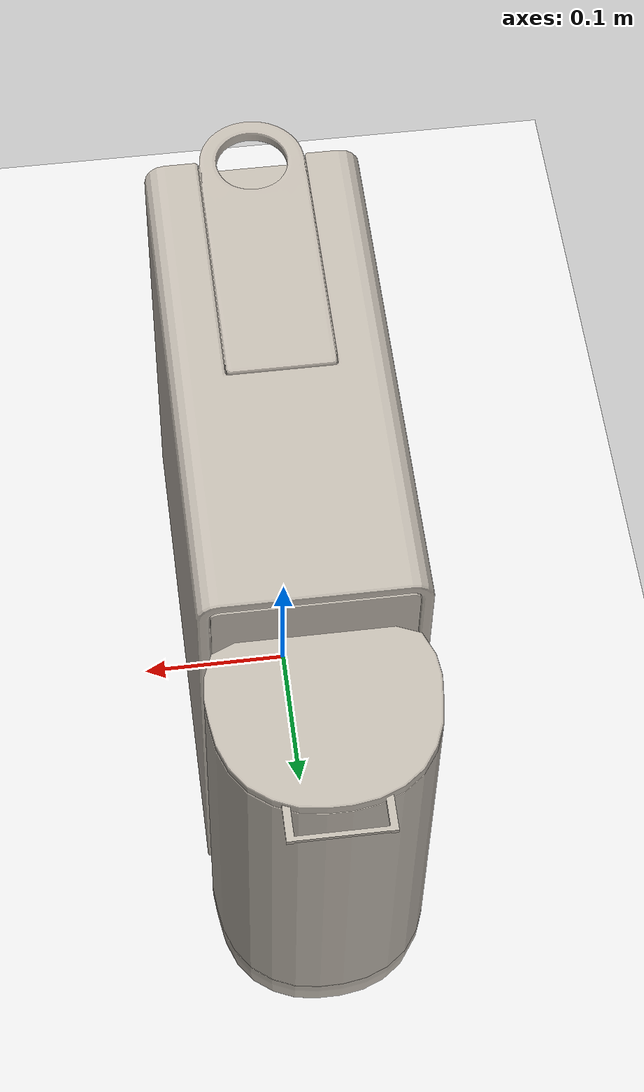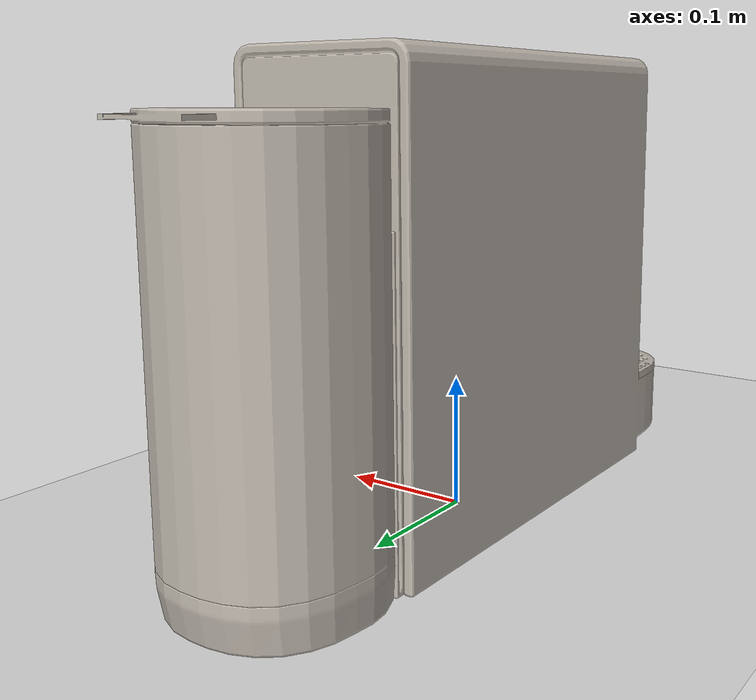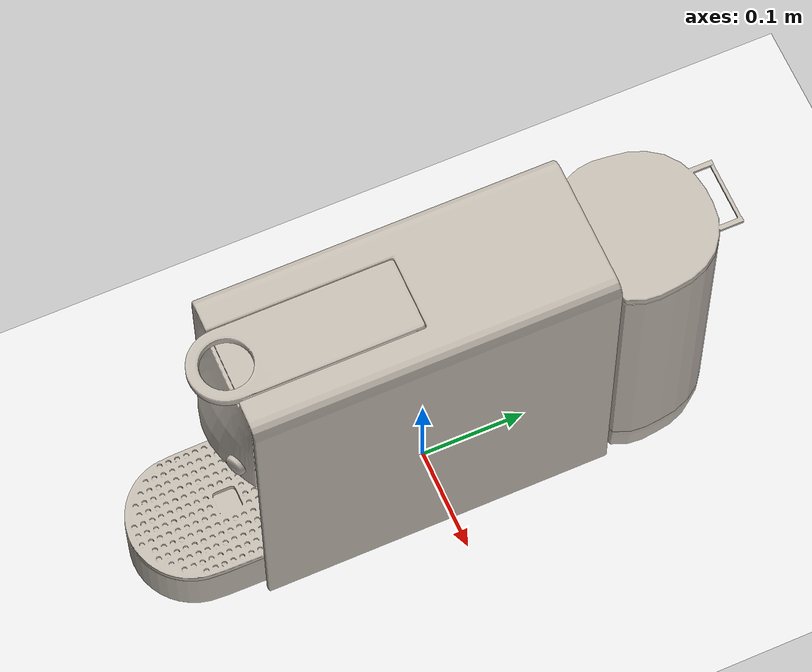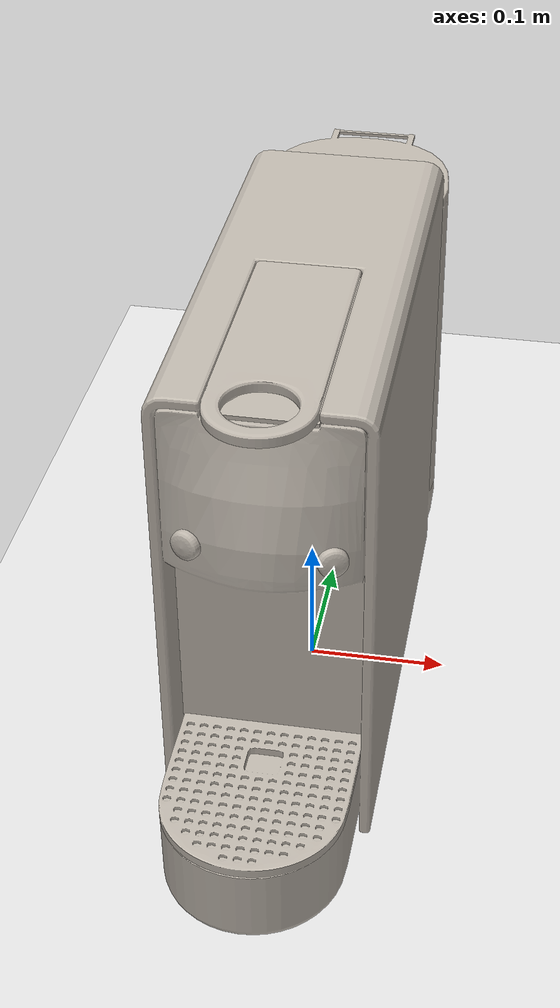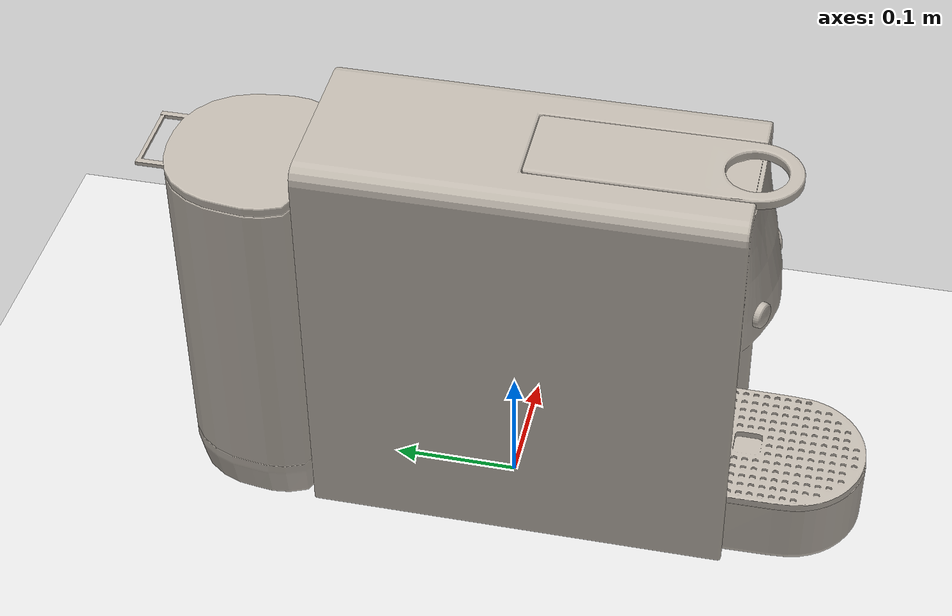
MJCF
<mujoco model="CoffeeMachine039">
  <compiler
    angle="radian"
    assetdir="../../examples/mujoco_models/CoffeeMachine039_obj"
    texturedir="../../Lightwheel/CoffeeMachine039/texture"
  />

  <visual>
    <global offwidth="1024" offheight="1024" />
  </visual>

  <asset>
    <texture name="T_CoffeeMachine039_BC001" type="2d" file="T_CoffeeMachine039_BC001.png" />
    <material
      name="material_0"
      texture="T_CoffeeMachine039_BC001"
      rgba="1 1 1 1"
      texuniform="false"
      texrepeat="1 1"
      specular="0"
      reflectance="0"
      shininess="0"
    />
    <texture name="T_CoffeeMachine039_ORM001" type="2d" file="T_CoffeeMachine039_ORM001.png" />
    <material
      name="material_1"
      texture="T_CoffeeMachine039_ORM001"
      rgba="1 1 1 1"
      texuniform="false"
      texrepeat="1 1"
      specular="0"
      reflectance="0"
      shininess="0"
    />
    <mesh name="CoffeeMachine039_Body001" file="CoffeeMachine039_Body001.obj" />
    <mesh name="CoffeeMachine039_Button001" file="CoffeeMachine039_Button001.obj" />
    <mesh name="CoffeeMachine039_Button002" file="CoffeeMachine039_Button002.obj" />
    <mesh name="CoffeeMachine039_Container001_Clear" file="CoffeeMachine039_Container001_Clear.obj" />
    <mesh name="CoffeeMachine039_Lid003" file="CoffeeMachine039_Lid003.obj" />
    <mesh name="CoffeeMachine039_Lid001" file="CoffeeMachine039_Lid001.obj" />
    <mesh name="CoffeeMachine039_Lid002" file="CoffeeMachine039_Lid002.obj" />
  </asset>

  <worldbody>
    <geom name="ground" type="plane" size="5 5 0.1" rgba="0.9 0.9 0.9 1" />
    <light pos="0 0 3" dir="0 0 -1" diffuse="0.7 0.7 0.7" specular="0.3 0.3 0.3" />
    <light pos="2 2 2" dir="-1 -1 -1" diffuse="0.6 0.6 0.6" specular="0.2 0.2 0.2" />

    <!-- Main object body -->
    <body name="CoffeeMachine039" pos="0 0 0.173010">
    <inertial pos="0 0 0" quat="1 0 0 0" mass="12.013709" diaginertia="1 1 1" />

      <geom type="mesh" mesh="CoffeeMachine039_Body001" material="material_0" />

      <body name="CoffeeMachine039_Button001" pos="0 0 0">
        <joint
          name="Button001_joint"
          type="slide"
          axis="-0.402952 0.915221 0.000000"
          pos="0.045185 -0.192405 0.072756"
          damping="1.0"
          limited="true"
          range="0.000000 0.003000"
        />
        <geom type="mesh" mesh="CoffeeMachine039_Button001" material="material_0" />
      </body>
      <body name="CoffeeMachine039_Button002" pos="0 0 0">
        <joint
          name="Button002_joint"
          type="slide"
          axis="0.368636 0.928790 0.038165"
          pos="-0.044163 -0.193179 0.074602"
          damping="1.0"
          limited="true"
          range="0.000000 0.004000"
        />
        <geom type="mesh" mesh="CoffeeMachine039_Button002" material="material_0" />
      </body>
      <body name="CoffeeMachine039_Container001_Clear" pos="0 0 0">
        <joint
          name="Container001_Clear_joint"
          type="slide"
          axis="0.000000 0.000000 1.000000"
          pos="0.000135 0.216824 -0.024764"
          damping="1.0"
          limited="true"
          range="0.000000 0.080000"
        />
        <geom type="mesh" mesh="CoffeeMachine039_Container001_Clear" material="material_0" />
        <body name="CoffeeMachine039_Lid003" pos="0 0 0">
          <joint
            name="Lid003_joint"
            type="hinge"
            axis="1.000000 0.000000 0.000000"
            pos="0.000137 0.160653 0.127579"
            damping="1.0"
            limited="true"
            range="0.000000 1.570796"
          />
          <geom type="mesh" mesh="CoffeeMachine039_Lid003" material="material_0" />
        </body>
      </body>
      <body name="CoffeeMachine039_Lid001" pos="0 0 0">
        <joint
          name="Lid001_joint"
          type="hinge"
          axis="-1.000000 0.000000 0.000000"
          pos="-0.000146 -0.012672 0.168101"
          damping="1.0"
          limited="true"
          range="0.000000 1.570796"
        />
        <geom type="mesh" mesh="CoffeeMachine039_Lid001" material="material_0" />
      </body>
      <body name="CoffeeMachine039_Lid002" pos="0 0 0">
        <joint
          name="Lid002_joint"
          type="slide"
          axis="0.000000 0.000000 1.000000"
          pos="-0.000024 -0.221003 -0.106341"
          damping="1.0"
          limited="true"
          range="0.000000 0.080000"
        />
        <geom type="mesh" mesh="CoffeeMachine039_Lid002" material="material_0" />
      </body>
    </body>
  </worldbody>
</mujoco>
